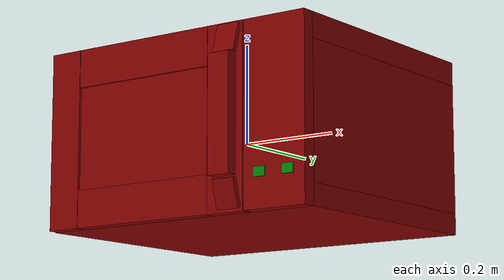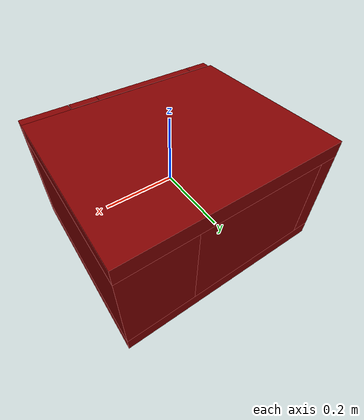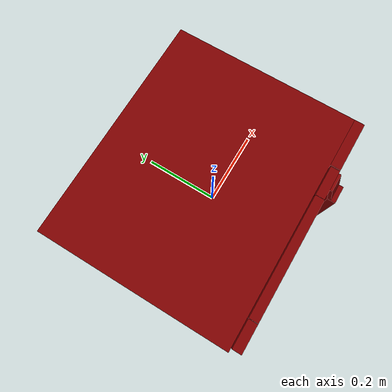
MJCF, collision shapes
<mujoco model="model">
  <compiler angle="radian"/>
  <asset>
    <mesh file="visuals/door.obj" name="door_vis"/>
    <mesh file="visuals/door_Clear.obj" name="door_Clear_vis"/>
    <mesh file="visuals/Body001.obj" name="Body001_vis"/>
    <mesh file="visuals/Disc001.obj" name="Disc001_vis"/>
    <texture file="visuals/T_BC001.png" name="Body001_material" type="2d"/>
    <material name="Body001_material" rgba="1 1 1 1.0" texture="Body001_material" shininess="0.4472135901451111" specular="0.3103448502657381"/>
    <texture file="visuals/T_BC001.png" name="door_material" type="2d"/>
    <material name="door_material" rgba="1 1 1 1.0" texture="door_material" shininess="0.4472135901451111" specular="0.3103448502657381"/>
    <material name="door_Clear_material" rgba="0.05796752870082855 0.05796752870082855 0.05796752870082855 0.800000011920929" shininess="0.4472135901451111" specular="0.3103448502657381"/>
    <texture file="visuals/T_BC001.png" name="Disc001_material" type="2d"/>
    <material name="Disc001_material" rgba="1 1 1 1.0" texture="Disc001_material" shininess="0.4472135901451111" specular="0.3103448502657381"/>
  </asset>
  <default>
    <default class="visual">
      <geom conaffinity="0" contype="0" group="1" type="mesh"/>
    </default>
    <default class="collision">
      <geom group="0" rgba="0.5 0 0 0.5"/>
    </default>
    <default class="spawn">
      <geom group="0" rgba="1 1 1 0.5" contype="0" conaffinity="0"/>
      <site group="0" rgba="1 1 1 0.5"/>
    </default>
    <default class="region">
      <geom group="1" conaffinity="0" contype="0" rgba="0 1 0 0"/>
    </default>
  </default>
  <worldbody>
    <body>
      <body name="object">
        <geom class="collision" type="box" pos="-0.073583 -0.035271 -0.119682" size="0.14736369252204895 0.14736369252204895 0.0014016532804816961" quat="1.0 0.0 0.0 0.0" name="tray" rgba="0 1 0 0.5"/>
        <geom class="collision" type="box" pos="0.270305 -0.245412 -0.107962" size="0.012578919529914856 0.0012121606850996614 0.009054339490830898" quat="1.0 0.0 0.0 0.0" name="stop_button" rgba="0.0 0.5 0 0.5"/>
        <geom class="collision" type="box" pos="0.208929 -0.245412 -0.107962" size="0.012578919529914856 0.0012121606850996614 0.009054339490830898" quat="1.0 0.0 0.0 0.0" name="start_button" rgba="0.0 0.5 0 0.5"/>
        <geom mesh="Body001_vis" type="mesh" solimp="0.998 0.998 0.001" solref="0.001 1" density="100" friction="0.95 0.3 0.1" class="visual" material="Body001_material"/>
        <geom class="collision" type="box" pos="-0.000000 0.030992 0.151148" size="0.306557834148407 0.24860113859176636 0.023851774632930756" quat="1.0 0.0 0.0 0.0"/>
        <geom class="collision" type="box" pos="0.239909 -0.230358 0.000000" size="0.06664859503507614 0.013609462417662144 0.17499971389770508" quat="1.0 0.0 0.0 0.0"/>
        <geom class="collision" type="box" pos="-0.000000 0.030992 -0.153827" size="0.30655789375305176 0.2486012727022171 0.02117295376956463" quat="1.0 0.0 0.0 0.0"/>
        <geom class="collision" type="box" pos="0.210115 0.031896 -0.002492" size="0.09644266963005066 0.24769803881645203 0.130575031042099" quat="1.0 0.0 0.0 0.0"/>
        <geom class="collision" type="box" pos="-0.280391 0.030992 -0.002492" size="0.02616698667407036 0.24860140681266785 0.13057507574558258" quat="1.0 0.0 0.0 0.0"/>
        <geom class="collision" type="box" pos="-0.069833 0.213152 -0.002492" size="0.18409323692321777 0.06644230335950851 0.13057512044906616" quat="1.0 0.0 0.0 0.0"/>
        <body name="door">
          <joint axis="0.0 0.0 1.0" pos="-0.293211 -0.232038 0.000000" limited="true" name="microjoint" range="-1.5707963267948966 0.0" type="hinge" damping="1" frictionloss="1" armature=".01" stiffness="0.05"/>
          <geom mesh="door_vis" type="mesh" solimp="0.998 0.998 0.001" solref="0.001 1" density="100" friction="0.95 0.3 0.1" class="visual" material="door_material"/>
          <geom class="collision" type="box" pos="-0.261434 -0.231925 -0.000027" size="0.035470761358737946 0.011848047375679016 0.17527179419994354" quat="1.0 0.0 0.0 0.0"/>
          <geom class="collision" type="box" pos="0.130202 -0.231925 -0.000027" size="0.040074169635772705 0.011848047375679016 0.17527179419994354" quat="1.0 0.0 0.0 0.0"/>
          <geom class="collision" type="box" pos="-0.067610 -0.231925 0.137862" size="0.1575537770986557 0.011848047375679016 0.03738280385732651" quat="1.0 0.0 0.0 0.0"/>
          <geom class="collision" type="box" pos="-0.067610 -0.231925 -0.138336" size="0.1575537770986557 0.011848047375679016 0.03666391223669052" quat="1.0 0.0 0.0 0.0"/>
          <geom class="collision" type="box" pos="0.142310 -0.268610 0.000545" size="0.023645726963877678 0.010694717057049274 0.11195584386587143" quat="1.0 0.0 0.0 0.0" name="door_handle"/>
          <geom class="collision" type="box" pos="0.142310 -0.253732 0.142854" size="0.023645726963877678 0.004713548347353935 0.028124690055847168" quat="0.9909031391143799 -0.1345769613981247 2.988212131288229e-17 1.1366435670369931e-23"/>
          <geom class="collision" type="box" pos="0.142310 -0.253732 -0.142274" size="0.023645726963877678 0.004713548347353935 0.028124690055847168" quat="0.9909031391143799 0.1345769613981247 -2.988212131288229e-17 1.0136951773372292e-23"/>
          <body name="door_Clear">
            <geom mesh="door_Clear_vis" type="mesh" solimp="0.998 0.998 0.001" solref="0.001 1" density="100" friction="0.95 0.3 0.1" class="visual" material="door_Clear_material"/>
            <geom class="collision" type="box" pos="-0.067496 -0.236918 -0.001915" size="0.1662762612104416 0.0011737904278561473 0.11264043301343918" quat="1.0 0.0 0.0 0.0"/>
          </body>
        </body>
        <body name="Disc001">
          <joint axis="0.0 0.0 1.0" pos="-0.070377 -0.036144 -0.125623" limited="false" name="Disc001_joint" range="0 360" type="hinge" damping="1" frictionloss="1" armature=".01" stiffness="0.05"/>
          <geom mesh="Disc001_vis" type="mesh" solimp="0.998 0.998 0.001" solref="0.001 1" density="100" friction="0.95 0.3 0.1" class="visual" material="Disc001_material"/>
          <geom class="collision" type="cylinder" pos="-0.073583 -0.035271 -0.127001" size="0.14736369252204895 0.003240163205191493" quat="1.0 0.0 0.0 0.0"/>
        </body>
        <geom class="region" name="reg_main" type="box" pos="0.0 0.017560000000000006 0.0" size="0.306558 0.262034 0.175"/>
        <geom class="region" name="reg_int" type="box" pos="-0.069156 -0.0382185 -0.002124000000000001" size="0.179486 0.1736455 0.123843"/>
      </body>
    </body>
  </worldbody>
  <actuator>
    <motor name="microjoint_actuator" joint="microjoint" gear="10"/>
    <motor name="Disc001_joint_actuator" joint="Disc001_joint" gear="10"/>
  </actuator>
</mujoco>
